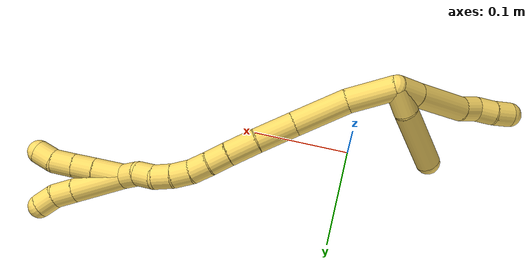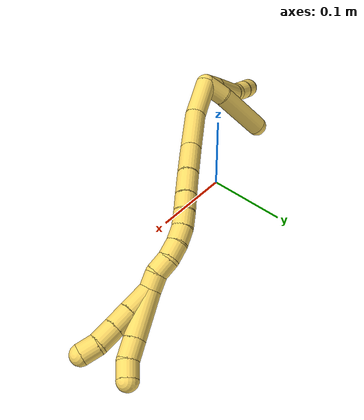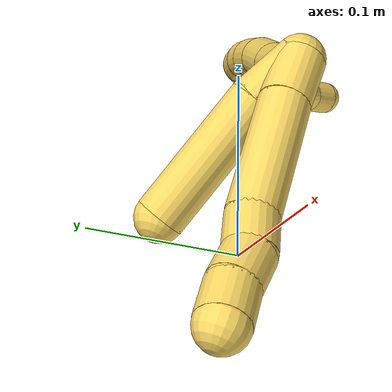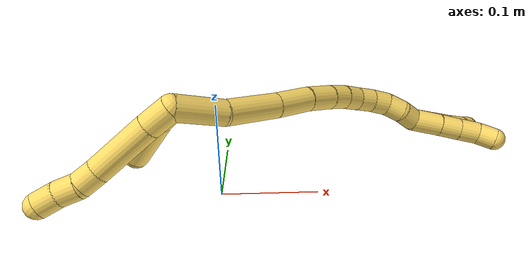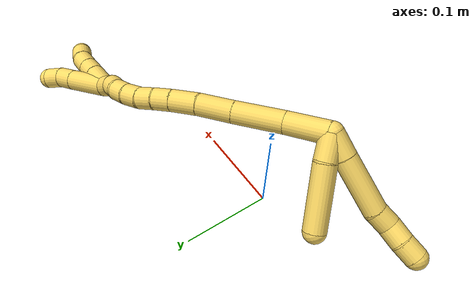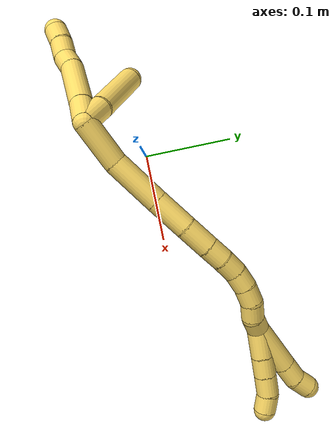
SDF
<sdf version="1.7">
 <world name="default">
  <model name="photoneo_s_sensor">
   <static>1</static>
   <pose>0 0 2 1.57079 1.57079 3.14159</pose>
   <link name="link">
    <inertial><mass>0.1</mass></inertial>
    <sensor name="sensor" type="depth">
     <update_rate>30</update_rate>
     <camera>
      <horizontal_fov>1.22</horizontal_fov>
      <image><width>1920</width><height>1200</height><format>B8G8R8</format></image>
      <clip><near>0.1</near><far>4</far></clip>
      <depth_camera><output>points</output></depth_camera>
     </camera>
     <plugin name="camera_plugin" filename="libgazebo_ros_depth_camera.so">
      <baseline>0.2</baseline>
      <alwaysOn>1</alwaysOn>
      <updateRate>0.0</updateRate>
      <cameraName>camera_ir</cameraName>
      <imageTopicName>/camera/color/image_raw</imageTopicName>
      <cameraInfoTopicName>/camera/color/camera_info</cameraInfoTopicName>
      <depthImageTopicName>/camera/depth/image_raw</depthImageTopicName>
      <depthImageCameraInfoTopicName>/camera/depth/camera_info</depthImageCameraInfoTopicName>
      <pointCloudTopicName>/camera/depth/points</pointCloudTopicName>
      <frameName>fr_optical</frameName>
      <pointCloudCutoff>0.1</pointCloudCutoff>
      <pointCloudCutoffMax>2.0</pointCloudCutoffMax>
      <distortionK1>0</distortionK1>
      <distortionK2>0</distortionK2>
      <distortionK3>0</distortionK3>
      <distortionT1>0</distortionT1>
      <distortionT2>0</distortionT2>
      <CxPrime>0</CxPrime>
      <Cx>0</Cx>
      <Cy>0</Cy>
      <focalLength>0</focalLength>
      <hackBaseline>0</hackBaseline>
     </plugin>
    </sensor>
   </link>
  </model>
  <model name="bin">
   <static>1</static>
   <link name="bottom">
    <collision name="collision-bottom">
     <pose>0 0 -0.01 0 -0 0</pose>
     <geometry><box><size>0.8 0.6 0.02</size></box></geometry>
     <surface>
      <friction><ode><mu>100</mu><mu2>100</mu2></ode></friction>
      <contact><collide_bitmask>65535</collide_bitmask></contact>
     </surface>
    </collision>
   </link>
   <link name="west_wall">
    <collision name="collision-west_wall">
     <pose>-0.41 0 0.1 0 -0 0</pose>
     <geometry><box><size>0.02 0.6 0.2</size></box></geometry>
     <surface>
      <friction><ode><mu>100</mu><mu2>100</mu2></ode></friction>
      <contact><collide_bitmask>65535</collide_bitmask></contact>
     </surface>
    </collision>
   </link>
   <link name="east_wall">
    <collision name="collision-east_wall">
     <pose>0.41 0 0.1 0 -0 0</pose>
     <geometry><box><size>0.02 0.6 0.2</size></box></geometry>
     <surface>
      <friction><ode><mu>100</mu><mu2>100</mu2></ode></friction>
      <contact><collide_bitmask>65535</collide_bitmask></contact>
     </surface>
    </collision>
   </link>
   <link name="south_wall">
    <collision name="collision-south_wall">
     <pose>0 -0.31 0.1 0 -0 0</pose>
     <geometry><box><size>0.8 0.02 0.2</size></box></geometry>
     <surface>
      <friction><ode><mu>100</mu><mu2>100</mu2></ode></friction>
      <contact><collide_bitmask>65535</collide_bitmask></contact>
     </surface>
    </collision>
   </link>
   <link name="north_wall">
    <collision name="collision-north_wall">
     <pose>0 0.31 0.1 0 -0 0</pose>
     <geometry><box><size>0.8 0.02 0.2</size></box></geometry>
     <surface>
      <friction><ode><mu>100</mu><mu2>100</mu2></ode></friction>
      <contact><collide_bitmask>65535</collide_bitmask></contact>
     </surface>
    </collision>
   </link>
  </model>
  <model name="5">
   <static>0</static>
   <link name="5">
    <collision name="collision-cylinder-e_1_2_8">
     <pose>-0.002184 -0.000607 -0.01332 3.09603 -0.162356 -2.59546</pose>
     <geometry><cylinder><radius>0.0125</radius><length>0.027022</length></cylinder></geometry>
     <surface>
      <friction><ode><mu>1.16</mu><mu2>1.16</mu2><slip1>0</slip1><slip2>0</slip2></ode></friction>
      <contact><ode><kp>1e+06</kp><kd>1</kd><max_vel>0</max_vel><min_depth>0.001</min_depth></ode></contact>
     </surface>
    </collision>
    <visual name="visual-cylinder-e_1_2_8">
     <pose>-0.002184 -0.000607 -0.01332 3.09603 -0.162356 -2.59546</pose>
     <geometry><cylinder><radius>0.0125</radius><length>0.027022</length></cylinder></geometry>
     <material><ambient>1 0.858824 0.4 1</ambient></material>
    </visual>
    <collision name="collision-cylinder-e_2_8_9">
     <pose>-0.008688 -0.004268 -0.057254 3.04219 -0.139514 -1.90422</pose>
     <geometry><cylinder><radius>0.0125</radius><length>0.062138</length></cylinder></geometry>
     <surface>
      <friction><ode><mu>1.16</mu><mu2>1.16</mu2><slip1>0</slip1><slip2>0</slip2></ode></friction>
      <contact><ode><kp>1e+06</kp><kd>1</kd><max_vel>0</max_vel><min_depth>0.001</min_depth></ode></contact>
     </surface>
    </collision>
    <visual name="visual-cylinder-e_2_8_9">
     <pose>-0.008688 -0.004268 -0.057254 3.04219 -0.139514 -1.90422</pose>
     <geometry><cylinder><radius>0.0125</radius><length>0.062138</length></cylinder></geometry>
     <material><ambient>1 0.858824 0.4 1</ambient></material>
    </visual>
    <collision name="collision-cylinder-e_3_9_10">
     <pose>-0.015756 -0.010175 -0.097194 2.84459 -0.274638 -1.49152</pose>
     <geometry><cylinder><radius>0.0125</radius><length>0.020262</length></cylinder></geometry>
     <surface>
      <friction><ode><mu>1.16</mu><mu2>1.16</mu2><slip1>0</slip1><slip2>0</slip2></ode></friction>
      <contact><ode><kp>1e+06</kp><kd>1</kd><max_vel>0</max_vel><min_depth>0.001</min_depth></ode></contact>
     </surface>
    </collision>
    <visual name="visual-cylinder-e_3_9_10">
     <pose>-0.015756 -0.010175 -0.097194 2.84459 -0.274638 -1.49152</pose>
     <geometry><cylinder><radius>0.0125</radius><length>0.020262</length></cylinder></geometry>
     <material><ambient>1 0.858824 0.4 1</ambient></material>
    </visual>
    <collision name="collision-cylinder-e_4_10_11">
     <pose>-0.023016 -0.013035 -0.115687 3.14088 -0.457283 -3.13852</pose>
     <geometry><cylinder><radius>0.0125</radius><length>0.020438</length></cylinder></geometry>
     <surface>
      <friction><ode><mu>1.16</mu><mu2>1.16</mu2><slip1>0</slip1><slip2>0</slip2></ode></friction>
      <contact><ode><kp>1e+06</kp><kd>1</kd><max_vel>0</max_vel><min_depth>0.001</min_depth></ode></contact>
     </surface>
    </collision>
    <visual name="visual-cylinder-e_4_10_11">
     <pose>-0.023016 -0.013035 -0.115687 3.14088 -0.457283 -3.13852</pose>
     <geometry><cylinder><radius>0.0125</radius><length>0.020438</length></cylinder></geometry>
     <material><ambient>1 0.858824 0.4 1</ambient></material>
    </visual>
    <collision name="collision-cylinder-e_5_11_6">
     <pose>-0.031432 -0.01454 -0.134017 2.97947 -0.39813 -2.37592</pose>
     <geometry><cylinder><radius>0.0125</radius><length>0.02014</length></cylinder></geometry>
     <surface>
      <friction><ode><mu>1.16</mu><mu2>1.16</mu2><slip1>0</slip1><slip2>0</slip2></ode></friction>
      <contact><ode><kp>1e+06</kp><kd>1</kd><max_vel>0</max_vel><min_depth>0.001</min_depth></ode></contact>
     </surface>
    </collision>
    <visual name="visual-cylinder-e_5_11_6">
     <pose>-0.031432 -0.01454 -0.134017 2.97947 -0.39813 -2.37592</pose>
     <geometry><cylinder><radius>0.0125</radius><length>0.02014</length></cylinder></geometry>
     <material><ambient>1 0.858824 0.4 1</ambient></material>
    </visual>
    <collision name="collision-cylinder-e_1_2_12">
     <pose>0.003119 0.007768 -0.011822 -2.56026 0.217023 -0.698496</pose>
     <geometry><cylinder><radius>0.0125</radius><length>0.02897</length></cylinder></geometry>
     <surface>
      <friction><ode><mu>1.16</mu><mu2>1.16</mu2><slip1>0</slip1><slip2>0</slip2></ode></friction>
      <contact><ode><kp>1e+06</kp><kd>1</kd><max_vel>0</max_vel><min_depth>0.001</min_depth></ode></contact>
     </surface>
    </collision>
    <visual name="visual-cylinder-e_1_2_12">
     <pose>0.003119 0.007768 -0.011822 -2.56026 0.217023 -0.698496</pose>
     <geometry><cylinder><radius>0.0125</radius><length>0.02897</length></cylinder></geometry>
     <material><ambient>1 0.858824 0.4 1</ambient></material>
    </visual>
    <collision name="collision-cylinder-e_2_12_5">
     <pose>0.015689 0.029209 -0.055029 -2.73072 0.269347 -1.15309</pose>
     <geometry><cylinder><radius>0.0125</radius><length>0.07103</length></cylinder></geometry>
     <surface>
      <friction><ode><mu>1.16</mu><mu2>1.16</mu2><slip1>0</slip1><slip2>0</slip2></ode></friction>
      <contact><ode><kp>1e+06</kp><kd>1</kd><max_vel>0</max_vel><min_depth>0.001</min_depth></ode></contact>
     </surface>
    </collision>
    <visual name="visual-cylinder-e_2_12_5">
     <pose>0.015689 0.029209 -0.055029 -2.73072 0.269347 -1.15309</pose>
     <geometry><cylinder><radius>0.0125</radius><length>0.07103</length></cylinder></geometry>
     <material><ambient>1 0.858824 0.4 1</ambient></material>
    </visual>
    <collision name="collision-cylinder-e_1_2_13">
     <pose>0.022602 0.005153 0.009863 -0.481455 1.11328 -0.303178</pose>
     <geometry><cylinder><radius>0.0125</radius><length>0.050387</length></cylinder></geometry>
     <surface>
      <friction><ode><mu>1.16</mu><mu2>1.16</mu2><slip1>0</slip1><slip2>0</slip2></ode></friction>
      <contact><ode><kp>1e+06</kp><kd>1</kd><max_vel>0</max_vel><min_depth>0.001</min_depth></ode></contact>
     </surface>
    </collision>
    <visual name="visual-cylinder-e_1_2_13">
     <pose>0.022602 0.005153 0.009863 -0.481455 1.11328 -0.303178</pose>
     <geometry><cylinder><radius>0.0125</radius><length>0.050387</length></cylinder></geometry>
     <material><ambient>1 0.858824 0.4 1</ambient></material>
    </visual>
    <collision name="collision-cylinder-e_2_13_14">
     <pose>0.06767 0.021961 0.032754 -0.729824 0.909583 -0.369343</pose>
     <geometry><cylinder><radius>0.0125</radius><length>0.056929</length></cylinder></geometry>
     <surface>
      <friction><ode><mu>1.16</mu><mu2>1.16</mu2><slip1>0</slip1><slip2>0</slip2></ode></friction>
      <contact><ode><kp>1e+06</kp><kd>1</kd><max_vel>0</max_vel><min_depth>0.001</min_depth></ode></contact>
     </surface>
    </collision>
    <visual name="visual-cylinder-e_2_13_14">
     <pose>0.06767 0.021961 0.032754 -0.729824 0.909583 -0.369343</pose>
     <geometry><cylinder><radius>0.0125</radius><length>0.056929</length></cylinder></geometry>
     <material><ambient>1 0.858824 0.4 1</ambient></material>
    </visual>
    <collision name="collision-cylinder-e_3_14_15">
     <pose>0.105376 0.042343 0.055536 -0.729899 0.86117 -0.347448</pose>
     <geometry><cylinder><radius>0.0125</radius><length>0.04018</length></cylinder></geometry>
     <surface>
      <friction><ode><mu>1.16</mu><mu2>1.16</mu2><slip1>0</slip1><slip2>0</slip2></ode></friction>
      <contact><ode><kp>1e+06</kp><kd>1</kd><max_vel>0</max_vel><min_depth>0.001</min_depth></ode></contact>
     </surface>
    </collision>
    <visual name="visual-cylinder-e_3_14_15">
     <pose>0.105376 0.042343 0.055536 -0.729899 0.86117 -0.347448</pose>
     <geometry><cylinder><radius>0.0125</radius><length>0.04018</length></cylinder></geometry>
     <material><ambient>1 0.858824 0.4 1</ambient></material>
    </visual>
    <collision name="collision-cylinder-e_4_15_16">
     <pose>0.133193 0.057449 0.07158 -0.792489 0.951948 -0.424839</pose>
     <geometry><cylinder><radius>0.0125</radius><length>0.030882</length></cylinder></geometry>
     <surface>
      <friction><ode><mu>1.16</mu><mu2>1.16</mu2><slip1>0</slip1><slip2>0</slip2></ode></friction>
      <contact><ode><kp>1e+06</kp><kd>1</kd><max_vel>0</max_vel><min_depth>0.001</min_depth></ode></contact>
     </surface>
    </collision>
    <visual name="visual-cylinder-e_4_15_16">
     <pose>0.133193 0.057449 0.07158 -0.792489 0.951948 -0.424839</pose>
     <geometry><cylinder><radius>0.0125</radius><length>0.030882</length></cylinder></geometry>
     <material><ambient>1 0.858824 0.4 1</ambient></material>
    </visual>
    <collision name="collision-cylinder-e_5_16_17">
     <pose>0.154692 0.06818 0.081689 -0.85038 0.99502 -0.482251</pose>
     <geometry><cylinder><radius>0.0125</radius><length>0.021272</length></cylinder></geometry>
     <surface>
      <friction><ode><mu>1.16</mu><mu2>1.16</mu2><slip1>0</slip1><slip2>0</slip2></ode></friction>
      <contact><ode><kp>1e+06</kp><kd>1</kd><max_vel>0</max_vel><min_depth>0.001</min_depth></ode></contact>
     </surface>
    </collision>
    <visual name="visual-cylinder-e_5_16_17">
     <pose>0.154692 0.06818 0.081689 -0.85038 0.99502 -0.482251</pose>
     <geometry><cylinder><radius>0.0125</radius><length>0.021272</length></cylinder></geometry>
     <material><ambient>1 0.858824 0.4 1</ambient></material>
    </visual>
    <collision name="collision-cylinder-e_6_17_18">
     <pose>0.172683 0.075937 0.088554 -0.84105 1.10427 -0.537659</pose>
     <geometry><cylinder><radius>0.0125</radius><length>0.020311</length></cylinder></geometry>
     <surface>
      <friction><ode><mu>1.16</mu><mu2>1.16</mu2><slip1>0</slip1><slip2>0</slip2></ode></friction>
      <contact><ode><kp>1e+06</kp><kd>1</kd><max_vel>0</max_vel><min_depth>0.001</min_depth></ode></contact>
     </surface>
    </collision>
    <visual name="visual-cylinder-e_6_17_18">
     <pose>0.172683 0.075937 0.088554 -0.84105 1.10427 -0.537659</pose>
     <geometry><cylinder><radius>0.0125</radius><length>0.020311</length></cylinder></geometry>
     <material><ambient>1 0.858824 0.4 1</ambient></material>
    </visual>
    <collision name="collision-cylinder-e_7_18_19">
     <pose>0.190704 0.081098 0.095716 -0.40337 1.10711 -0.251388</pose>
     <geometry><cylinder><radius>0.0125</radius><length>0.020016</length></cylinder></geometry>
     <surface>
      <friction><ode><mu>1.16</mu><mu2>1.16</mu2><slip1>0</slip1><slip2>0</slip2></ode></friction>
      <contact><ode><kp>1e+06</kp><kd>1</kd><max_vel>0</max_vel><min_depth>0.001</min_depth></ode></contact>
     </surface>
    </collision>
    <visual name="visual-cylinder-e_7_18_19">
     <pose>0.190704 0.081098 0.095716 -0.40337 1.10711 -0.251388</pose>
     <geometry><cylinder><radius>0.0125</radius><length>0.020016</length></cylinder></geometry>
     <material><ambient>1 0.858824 0.4 1</ambient></material>
    </visual>
    <collision name="collision-cylinder-e_8_19_20">
     <pose>0.20877 0.082895 0.103959 -0.009762 1.14573 -0.006297</pose>
     <geometry><cylinder><radius>0.0125</radius><length>0.020009</length></cylinder></geometry>
     <surface>
      <friction><ode><mu>1.16</mu><mu2>1.16</mu2><slip1>0</slip1><slip2>0</slip2></ode></friction>
      <contact><ode><kp>1e+06</kp><kd>1</kd><max_vel>0</max_vel><min_depth>0.001</min_depth></ode></contact>
     </surface>
    </collision>
    <visual name="visual-cylinder-e_8_19_20">
     <pose>0.20877 0.082895 0.103959 -0.009762 1.14573 -0.006297</pose>
     <geometry><cylinder><radius>0.0125</radius><length>0.020009</length></cylinder></geometry>
     <material><ambient>1 0.858824 0.4 1</ambient></material>
    </visual>
    <collision name="collision-cylinder-e_9_20_21">
     <pose>0.226969 0.080026 0.111109 0.766133 1.138 0.504474</pose>
     <geometry><cylinder><radius>0.0125</radius><length>0.020014</length></cylinder></geometry>
     <surface>
      <friction><ode><mu>1.16</mu><mu2>1.16</mu2><slip1>0</slip1><slip2>0</slip2></ode></friction>
      <contact><ode><kp>1e+06</kp><kd>1</kd><max_vel>0</max_vel><min_depth>0.001</min_depth></ode></contact>
     </surface>
    </collision>
    <visual name="visual-cylinder-e_9_20_21">
     <pose>0.226969 0.080026 0.111109 0.766133 1.138 0.504474</pose>
     <geometry><cylinder><radius>0.0125</radius><length>0.020014</length></cylinder></geometry>
     <material><ambient>1 0.858824 0.4 1</ambient></material>
    </visual>
    <collision name="collision-cylinder-e_10_21_1">
     <pose>0.246014 0.076711 0.114928 0.470561 1.48146 0.431589</pose>
     <geometry><cylinder><radius>0.0125</radius><length>0.020001</length></cylinder></geometry>
     <surface>
      <friction><ode><mu>1.16</mu><mu2>1.16</mu2><slip1>0</slip1><slip2>0</slip2></ode></friction>
      <contact><ode><kp>1e+06</kp><kd>1</kd><max_vel>0</max_vel><min_depth>0.001</min_depth></ode></contact>
     </surface>
    </collision>
    <visual name="visual-cylinder-e_10_21_1">
     <pose>0.246014 0.076711 0.114928 0.470561 1.48146 0.431589</pose>
     <geometry><cylinder><radius>0.0125</radius><length>0.020001</length></cylinder></geometry>
     <material><ambient>1 0.858824 0.4 1</ambient></material>
    </visual>
    <collision name="collision-cylinder-e_1_1_22">
     <pose>0.281754 0.081786 0.125765 -0.499538 1.15317 -0.328782</pose>
     <geometry><cylinder><radius>0.0125</radius><length>0.056407</length></cylinder></geometry>
     <surface>
      <friction><ode><mu>1.16</mu><mu2>1.16</mu2><slip1>0</slip1><slip2>0</slip2></ode></friction>
      <contact><ode><kp>1e+06</kp><kd>1</kd><max_vel>0</max_vel><min_depth>0.001</min_depth></ode></contact>
     </surface>
    </collision>
    <visual name="visual-cylinder-e_1_1_22">
     <pose>0.281754 0.081786 0.125765 -0.499538 1.15317 -0.328782</pose>
     <geometry><cylinder><radius>0.0125</radius><length>0.056407</length></cylinder></geometry>
     <material><ambient>1 0.858824 0.4 1</ambient></material>
    </visual>
    <collision name="collision-cylinder-e_2_22_23">
     <pose>0.318071 0.089733 0.140314 -0.500768 1.11707 -0.316962</pose>
     <geometry><cylinder><radius>0.0125</radius><length>0.023448</length></cylinder></geometry>
     <surface>
      <friction><ode><mu>1.16</mu><mu2>1.16</mu2><slip1>0</slip1><slip2>0</slip2></ode></friction>
      <contact><ode><kp>1e+06</kp><kd>1</kd><max_vel>0</max_vel><min_depth>0.001</min_depth></ode></contact>
     </surface>
    </collision>
    <visual name="visual-cylinder-e_2_22_23">
     <pose>0.318071 0.089733 0.140314 -0.500768 1.11707 -0.316962</pose>
     <geometry><cylinder><radius>0.0125</radius><length>0.023448</length></cylinder></geometry>
     <material><ambient>1 0.858824 0.4 1</ambient></material>
    </visual>
    <collision name="collision-cylinder-e_3_23_4">
     <pose>0.337178 0.096902 0.147255 -1.09333 1.01737 -0.654286</pose>
     <geometry><cylinder><radius>0.0125</radius><length>0.020145</length></cylinder></geometry>
     <surface>
      <friction><ode><mu>1.16</mu><mu2>1.16</mu2><slip1>0</slip1><slip2>0</slip2></ode></friction>
      <contact><ode><kp>1e+06</kp><kd>1</kd><max_vel>0</max_vel><min_depth>0.001</min_depth></ode></contact>
     </surface>
    </collision>
    <visual name="visual-cylinder-e_3_23_4">
     <pose>0.337178 0.096902 0.147255 -1.09333 1.01737 -0.654286</pose>
     <geometry><cylinder><radius>0.0125</radius><length>0.020145</length></cylinder></geometry>
     <material><ambient>1 0.858824 0.4 1</ambient></material>
    </visual>
    <collision name="collision-cylinder-e_1_1_24">
     <pose>0.269361 0.072777 0.124213 0.393976 0.96896 0.209314</pose>
     <geometry><cylinder><radius>0.0125</radius><length>0.03248</length></cylinder></geometry>
     <surface>
      <friction><ode><mu>1.16</mu><mu2>1.16</mu2><slip1>0</slip1><slip2>0</slip2></ode></friction>
      <contact><ode><kp>1e+06</kp><kd>1</kd><max_vel>0</max_vel><min_depth>0.001</min_depth></ode></contact>
     </surface>
    </collision>
    <visual name="visual-cylinder-e_1_1_24">
     <pose>0.269361 0.072777 0.124213 0.393976 0.96896 0.209314</pose>
     <geometry><cylinder><radius>0.0125</radius><length>0.03248</length></cylinder></geometry>
     <material><ambient>1 0.858824 0.4 1</ambient></material>
    </visual>
    <collision name="collision-cylinder-e_2_24_25">
     <pose>0.292431 0.066719 0.138509 0.410832 0.991655 0.22445</pose>
     <geometry><cylinder><radius>0.0125</radius><length>0.023142</length></cylinder></geometry>
     <surface>
      <friction><ode><mu>1.16</mu><mu2>1.16</mu2><slip1>0</slip1><slip2>0</slip2></ode></friction>
      <contact><ode><kp>1e+06</kp><kd>1</kd><max_vel>0</max_vel><min_depth>0.001</min_depth></ode></contact>
     </surface>
    </collision>
    <visual name="visual-cylinder-e_2_24_25">
     <pose>0.292431 0.066719 0.138509 0.410832 0.991655 0.22445</pose>
     <geometry><cylinder><radius>0.0125</radius><length>0.023142</length></cylinder></geometry>
     <material><ambient>1 0.858824 0.4 1</ambient></material>
    </visual>
    <collision name="collision-cylinder-e_3_25_26">
     <pose>0.311946 0.061512 0.150479 0.409803 0.971164 0.218469</pose>
     <geometry><cylinder><radius>0.0125</radius><length>0.023817</length></cylinder></geometry>
     <surface>
      <friction><ode><mu>1.16</mu><mu2>1.16</mu2><slip1>0</slip1><slip2>0</slip2></ode></friction>
      <contact><ode><kp>1e+06</kp><kd>1</kd><max_vel>0</max_vel><min_depth>0.001</min_depth></ode></contact>
     </surface>
    </collision>
    <visual name="visual-cylinder-e_3_25_26">
     <pose>0.311946 0.061512 0.150479 0.409803 0.971164 0.218469</pose>
     <geometry><cylinder><radius>0.0125</radius><length>0.023817</length></cylinder></geometry>
     <material><ambient>1 0.858824 0.4 1</ambient></material>
    </visual>
    <collision name="collision-cylinder-e_4_26_3">
     <pose>0.329245 0.053648 0.161442 0.824187 0.813041 0.372013</pose>
     <geometry><cylinder><radius>0.0125</radius><length>0.020562</length></cylinder></geometry>
     <surface>
      <friction><ode><mu>1.16</mu><mu2>1.16</mu2><slip1>0</slip1><slip2>0</slip2></ode></friction>
      <contact><ode><kp>1e+06</kp><kd>1</kd><max_vel>0</max_vel><min_depth>0.001</min_depth></ode></contact>
     </surface>
    </collision>
    <visual name="visual-cylinder-e_4_26_3">
     <pose>0.329245 0.053648 0.161442 0.824187 0.813041 0.372013</pose>
     <geometry><cylinder><radius>0.0125</radius><length>0.020562</length></cylinder></geometry>
     <material><ambient>1 0.858824 0.4 1</ambient></material>
    </visual>
    <collision name="collision-sphere-3">
     <pose>0.336713 0.048462 0.166241 0 -0 0</pose>
     <geometry><sphere><radius>0.0125</radius></sphere></geometry>
     <surface>
      <friction><ode><mu>1.16</mu><mu2>1.16</mu2><slip1>0</slip1><slip2>0</slip2></ode></friction>
      <contact><ode><kp>1e+06</kp><kd>1</kd><max_vel>0</max_vel><min_depth>0.001</min_depth></ode></contact>
     </surface>
    </collision>
    <visual name="visual-sphere-3">
     <pose>0.336713 0.048462 0.166241 0 -0 0</pose>
     <geometry><sphere><radius>0.0125</radius></sphere></geometry>
     <material><ambient>1 0.858824 0.4 1</ambient></material>
    </visual>
    <collision name="collision-sphere-26">
     <pose>0.321777 0.058834 0.156643 0 -0 0</pose>
     <geometry><sphere><radius>0.0125</radius></sphere></geometry>
     <surface>
      <friction><ode><mu>1.16</mu><mu2>1.16</mu2><slip1>0</slip1><slip2>0</slip2></ode></friction>
      <contact><ode><kp>1e+06</kp><kd>1</kd><max_vel>0</max_vel><min_depth>0.001</min_depth></ode></contact>
     </surface>
    </collision>
    <visual name="visual-sphere-26">
     <pose>0.321777 0.058834 0.156643 0 -0 0</pose>
     <geometry><sphere><radius>0.0125</radius></sphere></geometry>
     <material><ambient>1 0.858824 0.4 1</ambient></material>
    </visual>
    <collision name="collision-sphere-25">
     <pose>0.302115 0.06419 0.144315 0 -0 0</pose>
     <geometry><sphere><radius>0.0125</radius></sphere></geometry>
     <surface>
      <friction><ode><mu>1.16</mu><mu2>1.16</mu2><slip1>0</slip1><slip2>0</slip2></ode></friction>
      <contact><ode><kp>1e+06</kp><kd>1</kd><max_vel>0</max_vel><min_depth>0.001</min_depth></ode></contact>
     </surface>
    </collision>
    <visual name="visual-sphere-25">
     <pose>0.302115 0.06419 0.144315 0 -0 0</pose>
     <geometry><sphere><radius>0.0125</radius></sphere></geometry>
     <material><ambient>1 0.858824 0.4 1</ambient></material>
    </visual>
    <collision name="collision-sphere-24">
     <pose>0.282747 0.069248 0.132703 0 -0 0</pose>
     <geometry><sphere><radius>0.0125</radius></sphere></geometry>
     <surface>
      <friction><ode><mu>1.16</mu><mu2>1.16</mu2><slip1>0</slip1><slip2>0</slip2></ode></friction>
      <contact><ode><kp>1e+06</kp><kd>1</kd><max_vel>0</max_vel><min_depth>0.001</min_depth></ode></contact>
     </surface>
    </collision>
    <visual name="visual-sphere-24">
     <pose>0.282747 0.069248 0.132703 0 -0 0</pose>
     <geometry><sphere><radius>0.0125</radius></sphere></geometry>
     <material><ambient>1 0.858824 0.4 1</ambient></material>
    </visual>
    <collision name="collision-sphere-4">
     <pose>0.345747 0.101604 0.149688 0 -0 0</pose>
     <geometry><sphere><radius>0.0125</radius></sphere></geometry>
     <surface>
      <friction><ode><mu>1.16</mu><mu2>1.16</mu2><slip1>0</slip1><slip2>0</slip2></ode></friction>
      <contact><ode><kp>1e+06</kp><kd>1</kd><max_vel>0</max_vel><min_depth>0.001</min_depth></ode></contact>
     </surface>
    </collision>
    <visual name="visual-sphere-4">
     <pose>0.345747 0.101604 0.149688 0 -0 0</pose>
     <geometry><sphere><radius>0.0125</radius></sphere></geometry>
     <material><ambient>1 0.858824 0.4 1</ambient></material>
    </visual>
    <collision name="collision-sphere-23">
     <pose>0.328609 0.0922 0.144822 0 -0 0</pose>
     <geometry><sphere><radius>0.0125</radius></sphere></geometry>
     <surface>
      <friction><ode><mu>1.16</mu><mu2>1.16</mu2><slip1>0</slip1><slip2>0</slip2></ode></friction>
      <contact><ode><kp>1e+06</kp><kd>1</kd><max_vel>0</max_vel><min_depth>0.001</min_depth></ode></contact>
     </surface>
    </collision>
    <visual name="visual-sphere-23">
     <pose>0.328609 0.0922 0.144822 0 -0 0</pose>
     <geometry><sphere><radius>0.0125</radius></sphere></geometry>
     <material><ambient>1 0.858824 0.4 1</ambient></material>
    </visual>
    <collision name="collision-sphere-22">
     <pose>0.307533 0.087266 0.135806 0 -0 0</pose>
     <geometry><sphere><radius>0.0125</radius></sphere></geometry>
     <surface>
      <friction><ode><mu>1.16</mu><mu2>1.16</mu2><slip1>0</slip1><slip2>0</slip2></ode></friction>
      <contact><ode><kp>1e+06</kp><kd>1</kd><max_vel>0</max_vel><min_depth>0.001</min_depth></ode></contact>
     </surface>
    </collision>
    <visual name="visual-sphere-22">
     <pose>0.307533 0.087266 0.135806 0 -0 0</pose>
     <geometry><sphere><radius>0.0125</radius></sphere></geometry>
     <material><ambient>1 0.858824 0.4 1</ambient></material>
    </visual>
    <collision name="collision-sphere-1">
     <pose>0.255974 0.076306 0.115723 0 -0 0</pose>
     <geometry><sphere><radius>0.0125</radius></sphere></geometry>
     <surface>
      <friction><ode><mu>1.16</mu><mu2>1.16</mu2><slip1>0</slip1><slip2>0</slip2></ode></friction>
      <contact><ode><kp>1e+06</kp><kd>1</kd><max_vel>0</max_vel><min_depth>0.001</min_depth></ode></contact>
     </surface>
    </collision>
    <visual name="visual-sphere-1">
     <pose>0.255974 0.076306 0.115723 0 -0 0</pose>
     <geometry><sphere><radius>0.0125</radius></sphere></geometry>
     <material><ambient>1 0.858824 0.4 1</ambient></material>
    </visual>
    <collision name="collision-sphere-21">
     <pose>0.236053 0.077116 0.114133 0 -0 0</pose>
     <geometry><sphere><radius>0.0125</radius></sphere></geometry>
     <surface>
      <friction><ode><mu>1.16</mu><mu2>1.16</mu2><slip1>0</slip1><slip2>0</slip2></ode></friction>
      <contact><ode><kp>1e+06</kp><kd>1</kd><max_vel>0</max_vel><min_depth>0.001</min_depth></ode></contact>
     </surface>
    </collision>
    <visual name="visual-sphere-21">
     <pose>0.236053 0.077116 0.114133 0 -0 0</pose>
     <geometry><sphere><radius>0.0125</radius></sphere></geometry>
     <material><ambient>1 0.858824 0.4 1</ambient></material>
    </visual>
    <collision name="collision-sphere-6">
     <pose>-0.035336 -0.016038 -0.143178 0 -0 0</pose>
     <geometry><sphere><radius>0.0125</radius></sphere></geometry>
     <surface>
      <friction><ode><mu>1.16</mu><mu2>1.16</mu2><slip1>0</slip1><slip2>0</slip2></ode></friction>
      <contact><ode><kp>1e+06</kp><kd>1</kd><max_vel>0</max_vel><min_depth>0.001</min_depth></ode></contact>
     </surface>
    </collision>
    <visual name="visual-sphere-6">
     <pose>-0.035336 -0.016038 -0.143178 0 -0 0</pose>
     <geometry><sphere><radius>0.0125</radius></sphere></geometry>
     <material><ambient>1 0.858824 0.4 1</ambient></material>
    </visual>
    <collision name="collision-sphere-11">
     <pose>-0.027528 -0.013042 -0.124856 0 -0 0</pose>
     <geometry><sphere><radius>0.0125</radius></sphere></geometry>
     <surface>
      <friction><ode><mu>1.16</mu><mu2>1.16</mu2><slip1>0</slip1><slip2>0</slip2></ode></friction>
      <contact><ode><kp>1e+06</kp><kd>1</kd><max_vel>0</max_vel><min_depth>0.001</min_depth></ode></contact>
     </surface>
    </collision>
    <visual name="visual-sphere-11">
     <pose>-0.027528 -0.013042 -0.124856 0 -0 0</pose>
     <geometry><sphere><radius>0.0125</radius></sphere></geometry>
     <material><ambient>1 0.858824 0.4 1</ambient></material>
    </visual>
    <collision name="collision-sphere-10">
     <pose>-0.018504 -0.013029 -0.106518 0 -0 0</pose>
     <geometry><sphere><radius>0.0125</radius></sphere></geometry>
     <surface>
      <friction><ode><mu>1.16</mu><mu2>1.16</mu2><slip1>0</slip1><slip2>0</slip2></ode></friction>
      <contact><ode><kp>1e+06</kp><kd>1</kd><max_vel>0</max_vel><min_depth>0.001</min_depth></ode></contact>
     </surface>
    </collision>
    <visual name="visual-sphere-10">
     <pose>-0.018504 -0.013029 -0.106518 0 -0 0</pose>
     <geometry><sphere><radius>0.0125</radius></sphere></geometry>
     <material><ambient>1 0.858824 0.4 1</ambient></material>
    </visual>
    <collision name="collision-sphere-9">
     <pose>-0.013009 -0.007321 -0.08787 0 -0 0</pose>
     <geometry><sphere><radius>0.0125</radius></sphere></geometry>
     <surface>
      <friction><ode><mu>1.16</mu><mu2>1.16</mu2><slip1>0</slip1><slip2>0</slip2></ode></friction>
      <contact><ode><kp>1e+06</kp><kd>1</kd><max_vel>0</max_vel><min_depth>0.001</min_depth></ode></contact>
     </surface>
    </collision>
    <visual name="visual-sphere-9">
     <pose>-0.013009 -0.007321 -0.08787 0 -0 0</pose>
     <geometry><sphere><radius>0.0125</radius></sphere></geometry>
     <material><ambient>1 0.858824 0.4 1</ambient></material>
    </visual>
    <collision name="collision-sphere-2">
     <geometry><sphere><radius>0.0125</radius></sphere></geometry>
     <surface>
      <friction><ode><mu>1.16</mu><mu2>1.16</mu2><slip1>0</slip1><slip2>0</slip2></ode></friction>
      <contact><ode><kp>1e+06</kp><kd>1</kd><max_vel>0</max_vel><min_depth>0.001</min_depth></ode></contact>
     </surface>
    </collision>
    <visual name="visual-sphere-2">
     <geometry><sphere><radius>0.0125</radius></sphere></geometry>
     <material><ambient>1 0.858824 0.4 1</ambient></material>
    </visual>
    <collision name="collision-sphere-19">
     <pose>0.199655 0.082855 0.099833 0 -0 0</pose>
     <geometry><sphere><radius>0.0125</radius></sphere></geometry>
     <surface>
      <friction><ode><mu>1.16</mu><mu2>1.16</mu2><slip1>0</slip1><slip2>0</slip2></ode></friction>
      <contact><ode><kp>1e+06</kp><kd>1</kd><max_vel>0</max_vel><min_depth>0.001</min_depth></ode></contact>
     </surface>
    </collision>
    <visual name="visual-sphere-19">
     <pose>0.199655 0.082855 0.099833 0 -0 0</pose>
     <geometry><sphere><radius>0.0125</radius></sphere></geometry>
     <material><ambient>1 0.858824 0.4 1</ambient></material>
    </visual>
    <collision name="collision-sphere-8">
     <pose>-0.004368 -0.001215 -0.026639 0 -0 0</pose>
     <geometry><sphere><radius>0.0125</radius></sphere></geometry>
     <surface>
      <friction><ode><mu>1.16</mu><mu2>1.16</mu2><slip1>0</slip1><slip2>0</slip2></ode></friction>
      <contact><ode><kp>1e+06</kp><kd>1</kd><max_vel>0</max_vel><min_depth>0.001</min_depth></ode></contact>
     </surface>
    </collision>
    <visual name="visual-sphere-8">
     <pose>-0.004368 -0.001215 -0.026639 0 -0 0</pose>
     <geometry><sphere><radius>0.0125</radius></sphere></geometry>
     <material><ambient>1 0.858824 0.4 1</ambient></material>
    </visual>
    <collision name="collision-sphere-12">
     <pose>0.006238 0.015536 -0.023644 0 -0 0</pose>
     <geometry><sphere><radius>0.0125</radius></sphere></geometry>
     <surface>
      <friction><ode><mu>1.16</mu><mu2>1.16</mu2><slip1>0</slip1><slip2>0</slip2></ode></friction>
      <contact><ode><kp>1e+06</kp><kd>1</kd><max_vel>0</max_vel><min_depth>0.001</min_depth></ode></contact>
     </surface>
    </collision>
    <visual name="visual-sphere-12">
     <pose>0.006238 0.015536 -0.023644 0 -0 0</pose>
     <geometry><sphere><radius>0.0125</radius></sphere></geometry>
     <material><ambient>1 0.858824 0.4 1</ambient></material>
    </visual>
    <collision name="collision-sphere-5">
     <pose>0.025139 0.042883 -0.086414 0 -0 0</pose>
     <geometry><sphere><radius>0.0125</radius></sphere></geometry>
     <surface>
      <friction><ode><mu>1.16</mu><mu2>1.16</mu2><slip1>0</slip1><slip2>0</slip2></ode></friction>
      <contact><ode><kp>1e+06</kp><kd>1</kd><max_vel>0</max_vel><min_depth>0.001</min_depth></ode></contact>
     </surface>
    </collision>
    <visual name="visual-sphere-5">
     <pose>0.025139 0.042883 -0.086414 0 -0 0</pose>
     <geometry><sphere><radius>0.0125</radius></sphere></geometry>
     <material><ambient>1 0.858824 0.4 1</ambient></material>
    </visual>
    <collision name="collision-sphere-13">
     <pose>0.045205 0.010307 0.019727 0 -0 0</pose>
     <geometry><sphere><radius>0.0125</radius></sphere></geometry>
     <surface>
      <friction><ode><mu>1.16</mu><mu2>1.16</mu2><slip1>0</slip1><slip2>0</slip2></ode></friction>
      <contact><ode><kp>1e+06</kp><kd>1</kd><max_vel>0</max_vel><min_depth>0.001</min_depth></ode></contact>
     </surface>
    </collision>
    <visual name="visual-sphere-13">
     <pose>0.045205 0.010307 0.019727 0 -0 0</pose>
     <geometry><sphere><radius>0.0125</radius></sphere></geometry>
     <material><ambient>1 0.858824 0.4 1</ambient></material>
    </visual>
    <collision name="collision-sphere-14">
     <pose>0.090135 0.033615 0.045781 0 -0 0</pose>
     <geometry><sphere><radius>0.0125</radius></sphere></geometry>
     <surface>
      <friction><ode><mu>1.16</mu><mu2>1.16</mu2><slip1>0</slip1><slip2>0</slip2></ode></friction>
      <contact><ode><kp>1e+06</kp><kd>1</kd><max_vel>0</max_vel><min_depth>0.001</min_depth></ode></contact>
     </surface>
    </collision>
    <visual name="visual-sphere-14">
     <pose>0.090135 0.033615 0.045781 0 -0 0</pose>
     <geometry><sphere><radius>0.0125</radius></sphere></geometry>
     <material><ambient>1 0.858824 0.4 1</ambient></material>
    </visual>
    <collision name="collision-sphere-15">
     <pose>0.120616 0.051071 0.065291 0 -0 0</pose>
     <geometry><sphere><radius>0.0125</radius></sphere></geometry>
     <surface>
      <friction><ode><mu>1.16</mu><mu2>1.16</mu2><slip1>0</slip1><slip2>0</slip2></ode></friction>
      <contact><ode><kp>1e+06</kp><kd>1</kd><max_vel>0</max_vel><min_depth>0.001</min_depth></ode></contact>
     </surface>
    </collision>
    <visual name="visual-sphere-15">
     <pose>0.120616 0.051071 0.065291 0 -0 0</pose>
     <geometry><sphere><radius>0.0125</radius></sphere></geometry>
     <material><ambient>1 0.858824 0.4 1</ambient></material>
    </visual>
    <collision name="collision-sphere-16">
     <pose>0.14577 0.063828 0.077868 0 -0 0</pose>
     <geometry><sphere><radius>0.0125</radius></sphere></geometry>
     <surface>
      <friction><ode><mu>1.16</mu><mu2>1.16</mu2><slip1>0</slip1><slip2>0</slip2></ode></friction>
      <contact><ode><kp>1e+06</kp><kd>1</kd><max_vel>0</max_vel><min_depth>0.001</min_depth></ode></contact>
     </surface>
    </collision>
    <visual name="visual-sphere-16">
     <pose>0.14577 0.063828 0.077868 0 -0 0</pose>
     <geometry><sphere><radius>0.0125</radius></sphere></geometry>
     <material><ambient>1 0.858824 0.4 1</ambient></material>
    </visual>
    <collision name="collision-sphere-17">
     <pose>0.163613 0.072532 0.085509 0 -0 0</pose>
     <geometry><sphere><radius>0.0125</radius></sphere></geometry>
     <surface>
      <friction><ode><mu>1.16</mu><mu2>1.16</mu2><slip1>0</slip1><slip2>0</slip2></ode></friction>
      <contact><ode><kp>1e+06</kp><kd>1</kd><max_vel>0</max_vel><min_depth>0.001</min_depth></ode></contact>
     </surface>
    </collision>
    <visual name="visual-sphere-17">
     <pose>0.163613 0.072532 0.085509 0 -0 0</pose>
     <geometry><sphere><radius>0.0125</radius></sphere></geometry>
     <material><ambient>1 0.858824 0.4 1</ambient></material>
    </visual>
    <collision name="collision-sphere-18">
     <pose>0.181753 0.079341 0.091599 0 -0 0</pose>
     <geometry><sphere><radius>0.0125</radius></sphere></geometry>
     <surface>
      <friction><ode><mu>1.16</mu><mu2>1.16</mu2><slip1>0</slip1><slip2>0</slip2></ode></friction>
      <contact><ode><kp>1e+06</kp><kd>1</kd><max_vel>0</max_vel><min_depth>0.001</min_depth></ode></contact>
     </surface>
    </collision>
    <visual name="visual-sphere-18">
     <pose>0.181753 0.079341 0.091599 0 -0 0</pose>
     <geometry><sphere><radius>0.0125</radius></sphere></geometry>
     <material><ambient>1 0.858824 0.4 1</ambient></material>
    </visual>
    <collision name="collision-sphere-20">
     <pose>0.217884 0.082936 0.108084 0 -0 0</pose>
     <geometry><sphere><radius>0.0125</radius></sphere></geometry>
     <surface>
      <friction><ode><mu>1.16</mu><mu2>1.16</mu2><slip1>0</slip1><slip2>0</slip2></ode></friction>
      <contact><ode><kp>1e+06</kp><kd>1</kd><max_vel>0</max_vel><min_depth>0.001</min_depth></ode></contact>
     </surface>
    </collision>
    <visual name="visual-sphere-20">
     <pose>0.217884 0.082936 0.108084 0 -0 0</pose>
     <geometry><sphere><radius>0.0125</radius></sphere></geometry>
     <material><ambient>1 0.858824 0.4 1</ambient></material>
    </visual>
    <inertial>
     <pose>0.128848 0.041059 0.041534 0 -0 0</pose>
     <mass>0.75</mass>
     <inertia><ixx>9e-06</ixx><ixy>0</ixy><ixz>0</ixz><iyy>1.9e-05</iyy><iyz>0</iyz><izz>-0.000103</izz></inertia>
    </inertial>
   </link>
   <pose>-0.032233 -0.04796 0.11801 0.243718 0.736644 0.321622</pose>
  </model>
 </world>
</sdf>
